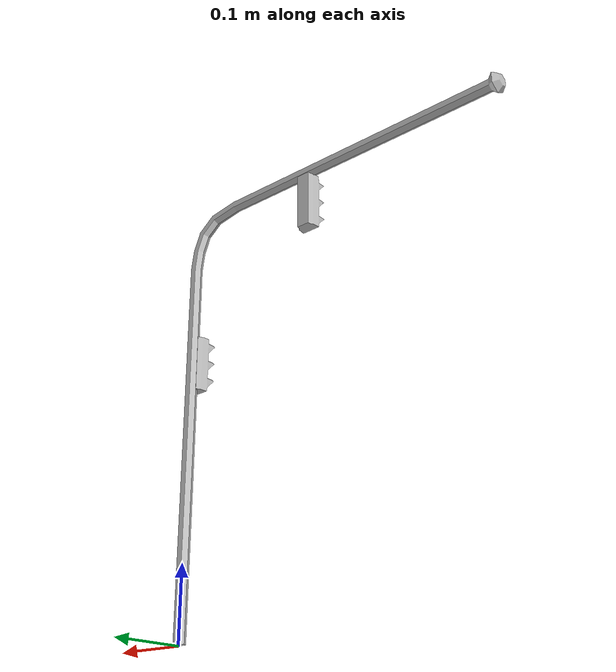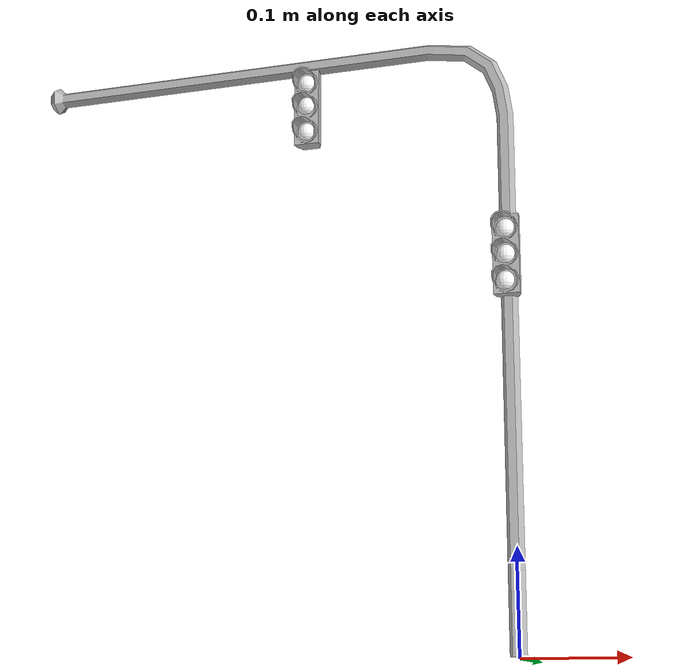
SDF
<?xml version='1.0'?>
<sdf version='1.6'>
  <model name='stop_light_0.1'>
    <link name='link'>
      <pose frame=''>0 0 0 0 -0 0</pose>
      <self_collide>0</self_collide>
      <kinematic>0</kinematic>
      <gravity>1</gravity>
      <inertial>
        <mass>1</mass>
        <pose frame=''>0 0 0 0 -0 0</pose>
        <inertia>
          <ixx>1</ixx>
          <ixy>0</ixy>
          <ixz>0</ixz>
          <iyy>1</iyy>
          <iyz>0</iyz>
          <izz>1</izz>
        </inertia>
      </inertial>
      <visual name='post'>
        <geometry>
          <mesh>
            <uri>model://stop_light_post/meshes/stop_light_post.obj</uri>
            <scale>0.001 0.001 0.001</scale>
          </mesh>
        </geometry>
        <material>
          <shader type='pixel'>
            <normal_map>__default__</normal_map>
          </shader>
        </material>
        <pose frame=''>0 0 0 0 -0 0</pose>
        <cast_shadows>1</cast_shadows>
        <transparency>0</transparency>
      </visual>
      <collision name='post'>
        <laser_retro>0</laser_retro>
        <max_contacts>10</max_contacts>
        <pose frame=''>0 0 0 0 -0 0</pose>
        <geometry>
          <mesh>
            <uri>/home/cs104/.gazebo/models/stop_light_post/meshes/stop_light_post.obj</uri>
            <scale>0.001 0.001 0.001</scale>
          </mesh>
        </geometry>
        <surface>
          <friction>
            <ode>
              <mu>1</mu>
              <mu2>1</mu2>
              <fdir1>0 0 0</fdir1>
              <slip1>0</slip1>
              <slip2>0</slip2>
            </ode>
            <torsional>
              <coefficient>1</coefficient>
              <patch_radius>0</patch_radius>
              <surface_radius>0</surface_radius>
              <use_patch_radius>1</use_patch_radius>
              <ode>
                <slip>0</slip>
              </ode>
            </torsional>
          </friction>
          <bounce>
            <restitution_coefficient>0</restitution_coefficient>
            <threshold>1e+06</threshold>
          </bounce>
          <contact>
            <collide_without_contact>0</collide_without_contact>
            <collide_without_contact_bitmask>1</collide_without_contact_bitmask>
            <collide_bitmask>1</collide_bitmask>
            <ode>
              <soft_cfm>0</soft_cfm>
              <soft_erp>0.2</soft_erp>
              <kp>1e+13</kp>
              <kd>1</kd>
              <max_vel>0.01</max_vel>
              <min_depth>0</min_depth>
            </ode>
            <bullet>
              <split_impulse>1</split_impulse>
              <split_impulse_penetration_threshold>-0.01</split_impulse_penetration_threshold>
              <soft_cfm>0</soft_cfm>
              <soft_erp>0.2</soft_erp>
              <kp>1e+13</kp>
              <kd>1</kd>
            </bullet>
          </contact>
        </surface>
      </collision>
    </link>
    <link name='center_light::link'>
      <pose frame=''>-0.2 0.004 0.582 0 -0 0</pose>
      <self_collide>0</self_collide>
      <kinematic>0</kinematic>
      <gravity>1</gravity>
      <inertial>
        <mass>1</mass>
        <pose frame=''>0 0 0 0 -0 0</pose>
        <inertia>
          <ixx>1</ixx>
          <ixy>0</ixy>
          <ixz>0</ixz>
          <iyy>1</iyy>
          <iyz>0</iyz>
          <izz>1</izz>
        </inertia>
      </inertial>
      <visual name='frame'>
        <geometry>
          <mesh>
            <uri>model://stop_light/meshes/stop_light.obj</uri>
            <scale>0.001 0.001 0.001</scale>
          </mesh>
        </geometry>
        <material>
          <shader type='pixel'>
            <normal_map>__default__</normal_map>
          </shader>
        </material>
        <pose frame=''>0 0 0 0 -0 0</pose>
        <cast_shadows>1</cast_shadows>
        <transparency>0</transparency>
      </visual>
      <visual name='red'>
        <pose frame=''>-0.000112 -0.008225 -0.014751 0 -0 0</pose>
        <geometry>
          <sphere>
            <radius>0.01012</radius>
          </sphere>
        </geometry>
        <material>
          <script>
            <uri>model://stop_light/materials/scripts/</uri>
            <uri>model://stop_light/materials/textures/</uri>
            <name>StopLight/Light</name>
          </script>
          <ambient>1 0 0 1</ambient>
          <specular>1 0 0 1</specular>
          <shader type='pixel'>
            <normal_map>__default__</normal_map>
          </shader>
          <diffuse>1 1 1 1</diffuse>
          <emissive>0 0 0 1</emissive>
        </material>
        <transparency>0</transparency>
        <cast_shadows>1</cast_shadows>
      </visual>
      <visual name='yellow'>
        <pose frame=''>-0.000112 -0.008225 -0.0382 0 -0 0</pose>
        <geometry>
          <sphere>
            <radius>0.01012</radius>
          </sphere>
        </geometry>
        <material>
          <script>
            <uri>model://stop_light/materials/scripts/</uri>
            <uri>model://stop_light/materials/textures/</uri>
            <name>StopLight/Light</name>
          </script>
          <ambient>1 1 0 1</ambient>
          <specular>1 1 0 1</specular>
          <shader type='pixel'>
            <normal_map>__default__</normal_map>
          </shader>
          <diffuse>1 1 1 1</diffuse>
          <emissive>0 0 0 1</emissive>
        </material>
        <transparency>0</transparency>
        <cast_shadows>1</cast_shadows>
      </visual>
      <visual name='green'>
        <pose frame=''>-0.000112 -0.008225 -0.0655 0 -0 0</pose>
        <geometry>
          <sphere>
            <radius>0.01012</radius>
          </sphere>
        </geometry>
        <material>
          <script>
            <uri>model://stop_light/materials/scripts/</uri>
            <uri>model://stop_light/materials/textures/</uri>
            <name>StopLight/Light</name>
          </script>
          <ambient>0 1 0 1</ambient>
          <specular>0 1 0 1</specular>
          <shader type='pixel'>
            <normal_map>__default__</normal_map>
          </shader>
          <diffuse>1 1 1 1</diffuse>
          <emissive>0 0 0 1</emissive>
        </material>
        <transparency>0</transparency>
        <cast_shadows>1</cast_shadows>
      </visual>
      <collision name='collision'>
        <laser_retro>0</laser_retro>
        <max_contacts>10</max_contacts>
        <pose frame=''>0 0 0 0 -0 0</pose>
        <geometry>
          <mesh>
            <uri>/home/cs104/.gazebo/models/stop_light/meshes/stop_light.obj</uri>
            <scale>0.001 0.001 0.001</scale>
          </mesh>
        </geometry>
        <surface>
          <friction>
            <ode>
              <mu>1</mu>
              <mu2>1</mu2>
              <fdir1>0 0 0</fdir1>
              <slip1>0</slip1>
              <slip2>0</slip2>
            </ode>
            <torsional>
              <coefficient>1</coefficient>
              <patch_radius>0</patch_radius>
              <surface_radius>0</surface_radius>
              <use_patch_radius>1</use_patch_radius>
              <ode>
                <slip>0</slip>
              </ode>
            </torsional>
          </friction>
          <bounce>
            <restitution_coefficient>0</restitution_coefficient>
            <threshold>1e+06</threshold>
          </bounce>
          <contact>
            <collide_without_contact>0</collide_without_contact>
            <collide_without_contact_bitmask>1</collide_without_contact_bitmask>
            <collide_bitmask>1</collide_bitmask>
            <ode>
              <soft_cfm>0</soft_cfm>
              <soft_erp>0.2</soft_erp>
              <kp>1e+13</kp>
              <kd>1</kd>
              <max_vel>0.01</max_vel>
              <min_depth>0</min_depth>
            </ode>
            <bullet>
              <split_impulse>1</split_impulse>
              <split_impulse_penetration_threshold>-0.01</split_impulse_penetration_threshold>
              <soft_cfm>0</soft_cfm>
              <soft_erp>0.2</soft_erp>
              <kp>1e+13</kp>
              <kd>1</kd>
            </bullet>
          </contact>
        </surface>
      </collision>
    </link>
    <link name='right_light::link'>
      <pose frame=''>0 -0.005 0.41 0 -0 0</pose>
      <self_collide>0</self_collide>
      <kinematic>0</kinematic>
      <gravity>1</gravity>
      <inertial>
        <mass>1</mass>
        <pose frame=''>0 0 0 0 -0 0</pose>
        <inertia>
          <ixx>1</ixx>
          <ixy>0</ixy>
          <ixz>0</ixz>
          <iyy>1</iyy>
          <iyz>0</iyz>
          <izz>1</izz>
        </inertia>
      </inertial>
      <visual name='frame'>
        <geometry>
          <mesh>
            <uri>model://stop_light/meshes/stop_light.obj</uri>
            <scale>0.001 0.001 0.001</scale>
          </mesh>
        </geometry>
        <material>
          <shader type='pixel'>
            <normal_map>__default__</normal_map>
          </shader>
        </material>
        <pose frame=''>0 0 0 0 -0 0</pose>
        <cast_shadows>1</cast_shadows>
        <transparency>0</transparency>
      </visual>
      <visual name='red'>
        <pose frame=''>-0.000112 -0.008225 -0.01511 0 -0 0</pose>
        <geometry>
          <sphere>
            <radius>0.01012</radius>
          </sphere>
        </geometry>
        <material>
          <script>
            <uri>model://stop_light/materials/scripts/</uri>
            <uri>model://stop_light/materials/textures/</uri>
            <name>StopLight/Light</name>
          </script>
          <ambient>1 0 0 1</ambient>
          <specular>1 0 0 1</specular>
          <shader type='pixel'>
            <normal_map>__default__</normal_map>
          </shader>
          <diffuse>1 1 1 1</diffuse>
          <emissive>0 0 0 1</emissive>
        </material>
        <transparency>0</transparency>
        <cast_shadows>1</cast_shadows>
      </visual>
      <visual name='yellow'>
        <pose frame=''>-0.000112 -0.008225 -0.0402 0 -0 0</pose>
        <geometry>
          <sphere>
            <radius>0.01012</radius>
          </sphere>
        </geometry>
        <material>
          <script>
            <uri>model://stop_light/materials/scripts/</uri>
            <uri>model://stop_light/materials/textures/</uri>
            <name>StopLight/Light</name>
          </script>
          <ambient>1 1 0 1</ambient>
          <specular>1 1 0 1</specular>
          <shader type='pixel'>
            <normal_map>__default__</normal_map>
          </shader>
          <diffuse>1 1 1 1</diffuse>
          <emissive>0 0 0 1</emissive>
        </material>
        <transparency>0</transparency>
        <cast_shadows>1</cast_shadows>
      </visual>
      <visual name='green'>
        <pose frame=''>-0.00112 -0.008225 -0.0655 0 -0 0</pose>
        <geometry>
          <sphere>
            <radius>0.01012</radius>
          </sphere>
        </geometry>
        <material>
          <script>
            <uri>model://stop_light/materials/scripts/</uri>
            <uri>model://stop_light/materials/textures/</uri>
            <name>StopLight/Light</name>
          </script>
          <ambient>0 1 0 1</ambient>
          <specular>0 1 0 1</specular>
          <shader type='pixel'>
            <normal_map>__default__</normal_map>
          </shader>
          <diffuse>1 1 1 1</diffuse>
          <emissive>0 0 0 1</emissive>
        </material>
        <transparency>0</transparency>
        <cast_shadows>1</cast_shadows>
      </visual>
      <collision name='collision'>
        <laser_retro>0</laser_retro>
        <max_contacts>10</max_contacts>
        <pose frame=''>0 0 0 0 -0 0</pose>
        <geometry>
          <mesh>
            <uri>/home/cs104/.gazebo/models/stop_light/meshes/stop_light.obj</uri>
            <scale>0.001 0.001 0.001</scale>
          </mesh>
        </geometry>
        <surface>
          <friction>
            <ode>
              <mu>1</mu>
              <mu2>1</mu2>
              <fdir1>0 0 0</fdir1>
              <slip1>0</slip1>
              <slip2>0</slip2>
            </ode>
            <torsional>
              <coefficient>1</coefficient>
              <patch_radius>0</patch_radius>
              <surface_radius>0</surface_radius>
              <use_patch_radius>1</use_patch_radius>
              <ode>
                <slip>0</slip>
              </ode>
            </torsional>
          </friction>
          <bounce>
            <restitution_coefficient>0</restitution_coefficient>
            <threshold>1e+06</threshold>
          </bounce>
          <contact>
            <collide_without_contact>0</collide_without_contact>
            <collide_without_contact_bitmask>1</collide_without_contact_bitmask>
            <collide_bitmask>1</collide_bitmask>
            <ode>
              <soft_cfm>0</soft_cfm>
              <soft_erp>0.2</soft_erp>
              <kp>1e+13</kp>
              <kd>1</kd>
              <max_vel>0.01</max_vel>
              <min_depth>0</min_depth>
            </ode>
            <bullet>
              <split_impulse>1</split_impulse>
              <split_impulse_penetration_threshold>-0.01</split_impulse_penetration_threshold>
              <soft_cfm>0</soft_cfm>
              <soft_erp>0.2</soft_erp>
              <kp>1e+13</kp>
              <kd>1</kd>
            </bullet>
          </contact>
        </surface>
      </collision>
    </link>
    <static>1</static>
    <allow_auto_disable>1</allow_auto_disable>
  </model>
</sdf>
